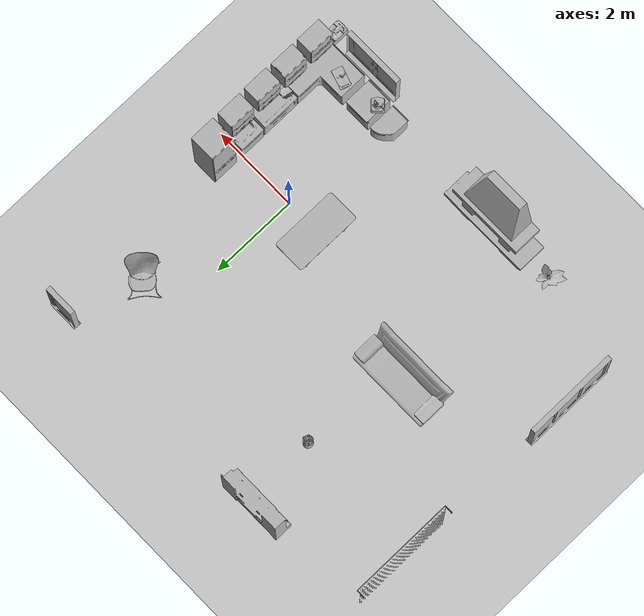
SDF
<sdf version="1.4">
 <world name="default">
  <light name="sun" type="directional">
   <pose>0 0 10 0 -0 0</pose>
   <diffuse>0.8 0.8 0.8 1</diffuse>
   <specular>0.2 0.2 0.2 1</specular>
   <attenuation>
    <range>1000</range>
    <constant>0.9</constant>
    <linear>0.01</linear>
    <quadratic>0.001</quadratic>
   </attenuation>
   <direction>-0.5 0.1 -0.9</direction>
  </light>
  <model name="ground_plane">
   <static>1</static>
   <link name="link">
    <collision name="collision">
     <geometry><plane><normal>0 0 1</normal><size>100 100</size></plane></geometry>
     <surface><friction><ode><mu>100</mu><mu2>50</mu2></ode></friction></surface>
    </collision>
    <visual name="visual">
     <cast_shadows>0</cast_shadows>
     <geometry><plane><normal>0 0 1</normal><size>100 100</size></plane></geometry>
     <material>
      <script><uri>file://media/materials/scripts/gazebo.material</uri><name>Gazebo/Grey</name></script>
     </material>
    </visual>
    <velocity_decay><linear>0</linear><angular>0</angular></velocity_decay>
   </link>
  </model>
  <physics type="ode">
   <max_step_size>0.001</max_step_size>
   <real_time_factor>1</real_time_factor>
   <real_time_update_rate>1000</real_time_update_rate>
   <gravity>0 0 -9.8</gravity>
  </physics>
  <scene><ambient>0.4 0.4 0.4 1</ambient><background>0.7 0.7 0.7 1</background><shadows>1</shadows></scene>
  <spherical_coordinates>
   <surface_model>EARTH_WGS84</surface_model>
   <latitude_deg>0</latitude_deg>
   <longitude_deg>0</longitude_deg>
   <elevation>0</elevation>
   <heading_deg>0</heading_deg>
  </spherical_coordinates>
  <model name="211_0">
   <pose>-6.91432 -0.964799 0.85 0 -0 0</pose>
   <static>1</static>
   <link name="link">
    <collision name="collision"><geometry><box><size>0.175 2.1 2</size></box></geometry></collision>
    <visual name="visual"><geometry><mesh><uri>model://211/211.dae</uri></mesh></geometry></visual>
    <velocity_decay><linear>0</linear><angular>0</angular></velocity_decay>
   </link>
  </model>
  <model name="212_0">
   <pose>0.602731 -2.9168 0.85 0 -0 1.5708</pose>
   <static>1</static>
   <link name="link">
    <collision name="collision"><geometry><box><size>0.175 1.4 2</size></box></geometry></collision>
    <visual name="visual"><geometry><mesh><uri>model://212/212.dae</uri></mesh></geometry></visual>
    <velocity_decay><linear>0</linear><angular>0</angular></velocity_decay>
   </link>
  </model>
  <model name="213_0">
   <pose>1.31873 4.8929 0.85 0 0 -1.5708</pose>
   <static>1</static>
   <link name="link">
    <collision name="collision"><geometry><box><size>0.175 0.7 2</size></box></geometry></collision>
    <visual name="visual"><geometry><mesh><uri>model://213/213.dae</uri></mesh></geometry></visual>
    <velocity_decay><linear>0</linear><angular>0</angular></velocity_decay>
   </link>
  </model>
  <model name="382_0">
   <pose>-4.17834 0.891196 0.05 0 -0 1.5708</pose>
   <static>1</static>
   <link name="link">
    <collision name="collision"><geometry><box><size>0.884506 1.99365 2</size></box></geometry></collision>
    <visual name="visual"><geometry><mesh><uri>model://382/382.dae</uri></mesh></geometry></visual>
    <velocity_decay><linear>0</linear><angular>0</angular></velocity_decay>
   </link>
  </model>
  <model name="577_0">
   <pose>-4.00656 4.75087 0.05 0 0 -1.5708</pose>
   <static>1</static>
   <link name="link">
    <collision name="collision"><geometry><box><size>0.430754 1.51002 2</size></box></geometry></collision>
    <visual name="visual"><geometry><mesh><uri>model://577/577.dae</uri></mesh></geometry></visual>
    <velocity_decay><linear>0</linear><angular>0</angular></velocity_decay>
   </link>
  </model>
  <model name="242_0">
   <pose>-3.20527 -2.59317 0.05 0 -0 1.5708</pose>
   <static>1</static>
   <link name="link">
    <collision name="collision"><geometry><box><size>0.66 2.18 2</size></box></geometry></collision>
    <visual name="visual"><geometry><mesh><uri>model://242/242.dae</uri></mesh></geometry></visual>
    <velocity_decay><linear>0</linear><angular>0</angular></velocity_decay>
   </link>
  </model>
  <model name="130_0">
   <pose>-4.76527 -2.59639 0.05 0 -0 0</pose>
   <static>1</static>
   <link name="link">
    <collision name="collision"><geometry><box><size>0.51716 0.566834 2</size></box></geometry></collision>
    <visual name="visual"><geometry><mesh><uri>model://130/130.dae</uri></mesh></geometry></visual>
    <velocity_decay><linear>0</linear><angular>0</angular></velocity_decay>
   </link>
  </model>
  <model name="284_0">
   <pose>1.34974 -2.16832 0.05 0 0 -3.14159</pose>
   <static>1</static>
   <link name="link">
    <collision name="collision"><geometry><box><size>1.25969 1.26017 2</size></box></geometry></collision>
    <visual name="visual"><geometry><mesh><uri>model://284/284.dae</uri></mesh></geometry></visual>
    <velocity_decay><linear>0</linear><angular>0</angular></velocity_decay>
   </link>
  </model>
  <model name="283_0">
   <pose>1.64631 -1.05968 0.05 0 -0 3.14159</pose>
   <static>1</static>
   <link name="link">
    <collision name="collision"><geometry><box><size>0.66 0.9 2</size></box></geometry></collision>
    <visual name="visual"><geometry><mesh><uri>model://283/283.dae</uri></mesh></geometry></visual>
    <velocity_decay><linear>0</linear><angular>0</angular></velocity_decay>
   </link>
  </model>
  <model name="290_0">
   <pose>-0.34927 -2.45136 0.05 0 -0 1.5708</pose>
   <static>1</static>
   <link name="link">
    <collision name="collision"><geometry><box><size>0.66 0.440009 2</size></box></geometry></collision>
    <visual name="visual"><geometry><mesh><uri>model://290/290.dae</uri></mesh></geometry></visual>
    <velocity_decay><linear>0</linear><angular>0</angular></velocity_decay>
   </link>
  </model>
  <model name="281_0">
   <pose>0.286733 -2.47449 0.05 0 -0 1.5708</pose>
   <static>1</static>
   <link name="link">
    <collision name="collision"><geometry><box><size>0.66 0.6 2</size></box></geometry></collision>
    <visual name="visual"><geometry><mesh><uri>model://281/281.dae</uri></mesh></geometry></visual>
    <velocity_decay><linear>0</linear><angular>0</angular></velocity_decay>
   </link>
  </model>
  <model name="295_0">
   <pose>1.63926 -0.2608 0.05 0 -0 3.14159</pose>
   <static>1</static>
   <link name="link">
    <collision name="collision"><geometry><box><size>0.66 0.6 2</size></box></geometry></collision>
    <visual name="visual"><geometry><mesh><uri>model://295/295.dae</uri></mesh></geometry></visual>
    <velocity_decay><linear>0</linear><angular>0</angular></velocity_decay>
   </link>
  </model>
  <model name="289_0">
   <pose>1.63407 0.483199 0.05 0 -0 3.14159</pose>
   <static>1</static>
   <link name="link">
    <collision name="collision"><geometry><box><size>0.643084 0.6 2</size></box></geometry></collision>
    <visual name="visual"><geometry><mesh><uri>model://289/289.dae</uri></mesh></geometry></visual>
    <velocity_decay><linear>0</linear><angular>0</angular></velocity_decay>
   </link>
  </model>
  <model name="287_0">
   <pose>1.73782 -0.236799 1.25 0 -0 3.14159</pose>
   <static>1</static>
   <link name="link">
    <collision name="collision"><geometry><box><size>0.433989 0.6 2</size></box></geometry></collision>
    <visual name="visual"><geometry><mesh><uri>model://287/287.dae</uri></mesh></geometry></visual>
    <velocity_decay><linear>0</linear><angular>0</angular></velocity_decay>
   </link>
  </model>
  <model name="287_1">
   <pose>1.74962 -0.9688 1.25 0 -0 3.14159</pose>
   <static>1</static>
   <link name="link">
    <collision name="collision"><geometry><box><size>0.433989 0.6 2</size></box></geometry></collision>
    <visual name="visual"><geometry><mesh><uri>model://287/287.dae</uri></mesh></geometry></visual>
    <velocity_decay><linear>0</linear><angular>0</angular></velocity_decay>
   </link>
  </model>
  <model name="286_0">
   <pose>1.73886 -1.6888 1.25 0 -0 3.14159</pose>
   <static>1</static>
   <link name="link">
    <collision name="collision"><geometry><box><size>0.433989 0.6 2</size></box></geometry></collision>
    <visual name="visual"><geometry><mesh><uri>model://286/286.dae</uri></mesh></geometry></visual>
    <velocity_decay><linear>0</linear><angular>0</angular></velocity_decay>
   </link>
  </model>
  <model name="286_1">
   <pose>1.74027 -2.41052 1.25 0 -0 3.14159</pose>
   <static>1</static>
   <link name="link">
    <collision name="collision"><geometry><box><size>0.433989 0.6 2</size></box></geometry></collision>
    <visual name="visual"><geometry><mesh><uri>model://286/286.dae</uri></mesh></geometry></visual>
    <velocity_decay><linear>0</linear><angular>0</angular></velocity_decay>
   </link>
  </model>
  <model name="221_0">
   <pose>1.76273 -2.7928 0.81 0 -0 3.14159</pose>
   <static>1</static>
   <link name="link">
    <collision name="collision"><geometry><box><size>0.38 0.29 2</size></box></geometry></collision>
    <visual name="visual"><geometry><mesh><uri>model://221/221.dae</uri></mesh></geometry></visual>
    <velocity_decay><linear>0</linear><angular>0</angular></velocity_decay>
   </link>
  </model>
  <model name="220_0">
   <pose>0.085248 -2.54832 0.81 0 -0 0.785398</pose>
   <static>1</static>
   <link name="link">
    <collision name="collision"><geometry><box><size>0.29 0.31 2</size></box></geometry></collision>
    <visual name="visual"><geometry><mesh><uri>model://220/220.dae</uri></mesh></geometry></visual>
    <velocity_decay><linear>0</linear><angular>0</angular></velocity_decay>
   </link>
  </model>
  <model name="245_0">
   <pose>1.00014 -2.42141 0.81 0 -0 1.25664</pose>
   <static>1</static>
   <link name="link">
    <collision name="collision"><geometry><box><size>0.249482 0.448496 2</size></box></geometry></collision>
    <visual name="visual"><geometry><mesh><uri>model://245/245.dae</uri></mesh></geometry></visual>
    <velocity_decay><linear>0</linear><angular>0</angular></velocity_decay>
   </link>
  </model>
  <model name="179_0">
   <pose>1.95491 -1.1728 1.11 0 -0 3.14159</pose>
   <static>1</static>
   <link name="link">
    <collision name="collision"><geometry><box><size>0.210021 0.41806 2</size></box></geometry></collision>
    <visual name="visual"><geometry><mesh><uri>model://179/179.dae</uri></mesh></geometry></visual>
    <velocity_decay><linear>0</linear><angular>0</angular></velocity_decay>
   </link>
  </model>
  <model name="538_0">
   <pose>1.53279 -1.39305 0.819809 0 -0 2.94961</pose>
   <static>1</static>
   <link name="link">
    <collision name="collision"><geometry><box><size>0.26966 0.229753 2</size></box></geometry></collision>
    <visual name="visual"><geometry><mesh><uri>model://538/538.dae</uri></mesh></geometry></visual>
    <velocity_decay><linear>0</linear><angular>0</angular></velocity_decay>
   </link>
  </model>
  <model name="41_0">
   <pose>-0.913205 0.135203 0.05 0 -0 0</pose>
   <static>1</static>
   <link name="link">
    <collision name="collision"><geometry><box><size>0.749976 1.55 2</size></box></geometry></collision>
    <visual name="visual"><geometry><mesh><uri>model://41/41.dae</uri></mesh></geometry></visual>
    <velocity_decay><linear>0</linear><angular>0</angular></velocity_decay>
   </link>
  </model>
  <model name="336_0">
   <pose>0.879577 3.21498 0.05 0 -0 2.42601</pose>
   <static>1</static>
   <link name="link">
    <collision name="collision"><geometry><box><size>0.754297 0.7 2</size></box></geometry></collision>
    <visual name="visual"><geometry><mesh><uri>model://336/336.dae</uri></mesh></geometry></visual>
    <velocity_decay><linear>0</linear><angular>0</angular></velocity_decay>
   </link>
  </model>
  <model name="258_0">
   <pose>-3.84856 3.1832 0.5 0 -0 0</pose>
   <static>1</static>
   <link name="link">
    <collision name="collision"><geometry><box><size>0.218804 0.218804 2</size></box></geometry></collision>
    <visual name="visual"><geometry><mesh><uri>model://258/258.dae</uri></mesh></geometry></visual>
    <velocity_decay><linear>0</linear><angular>0</angular></velocity_decay>
   </link>
  </model>
  <model name="276_0">
   <pose>-6.85335 3.4832 0.05 0 -0 0</pose>
   <static>1</static>
   <link name="link">
    <collision name="collision"><geometry><box><size>0.196587 2.36598 2</size></box></geometry></collision>
    <visual name="visual"><geometry><mesh><uri>model://276/276.dae</uri></mesh></geometry></visual>
    <velocity_decay><linear>0</linear><angular>0</angular></velocity_decay>
   </link>
  </model>
 </world>
</sdf>
